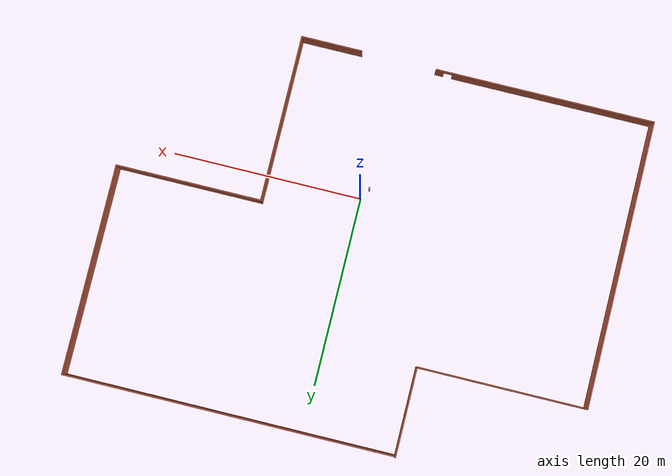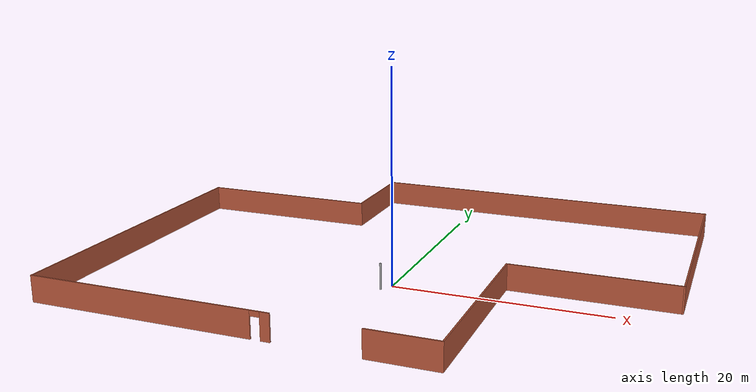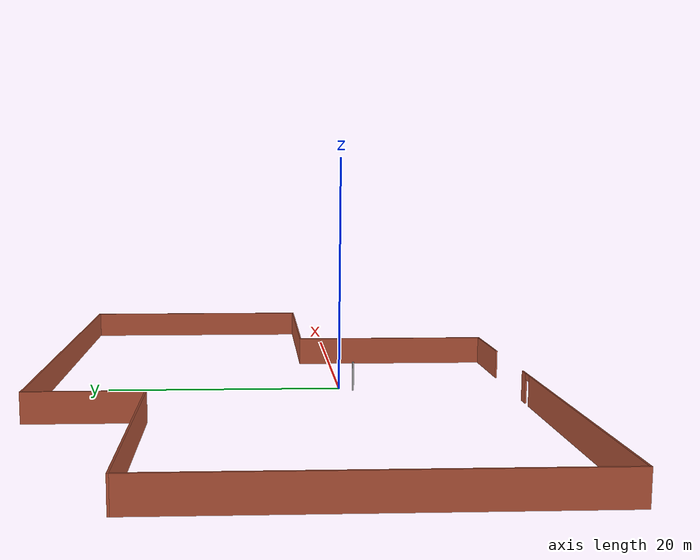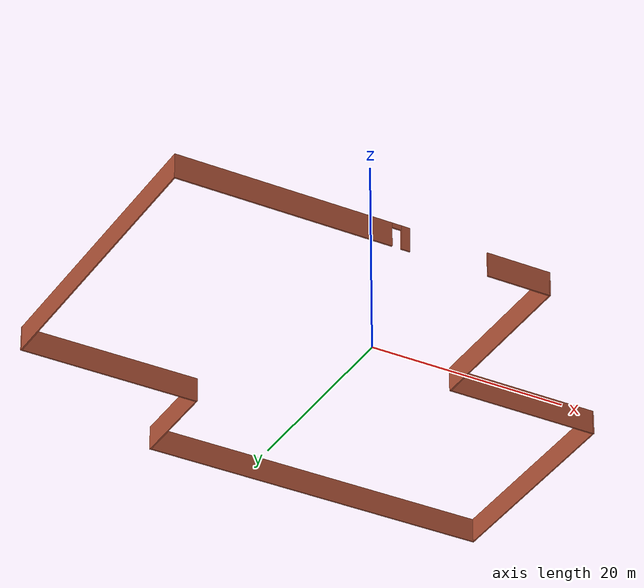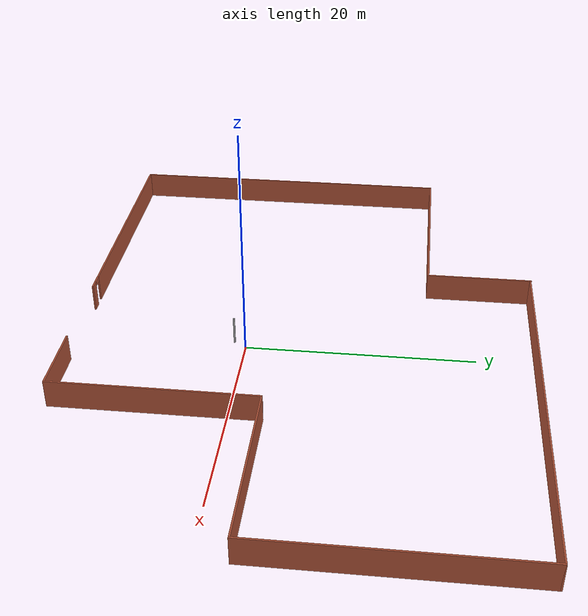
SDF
<?xml version='1.0'?>
<sdf version='1.6'>
  <model name='test'>
    <pose frame=''>-1.22512 5.11603 0 0 -0 0</pose>
    <link name='Wall_1'>
      <collision name='Wall_1_Collision'>
        <geometry>
          <box>
            <size>0.15 0.15 2.5</size>
          </box>
        </geometry>
        <pose frame=''>0 0 1.25 0 -0 0</pose>
      </collision>
      <visual name='Wall_1_Visual'>
        <pose frame=''>0 0 1.25 0 -0 0</pose>
        <geometry>
          <box>
            <size>0.15 0.15 2.5</size>
          </box>
        </geometry>
        <material>
          <script>
            <uri>file://media/materials/scripts/gazebo.material</uri>
            <name>Gazebo/Grey</name>
          </script>
          <ambient>1 1 1 1</ambient>
        </material>
      </visual>
      <pose frame=''>0.52512 -6.20603 0 0 -0 0</pose>
    </link>
    <link name='Wall_33'>
      <collision name='Wall_33_Collision'>
        <geometry>
          <box>
            <size>9.5 0.15 2.5</size>
          </box>
        </geometry>
        <pose frame=''>0 0 1.25 0 -0 0</pose>
      </collision>
      <visual name='Wall_33_Visual'>
        <pose frame=''>0 0 1.25 0 -0 0</pose>
        <geometry>
          <box>
            <size>9.5 0.15 2.5</size>
          </box>
        </geometry>
        <material>
          <script>
            <uri>file://media/materials/scripts/gazebo.material</uri>
            <name>Gazebo/Bricks</name>
          </script>
          <ambient>1 1 1 1</ambient>
        </material>
      </visual>
      <pose frame=''>-8.56286 15.1964 0 0 0 -1.5708</pose>
    </link>
    <link name='Wall_34'>
      <collision name='Wall_34_Collision'>
        <geometry>
          <box>
            <size>18 0.15 2.5</size>
          </box>
        </geometry>
        <pose frame=''>0 0 1.25 0 -0 0</pose>
      </collision>
      <visual name='Wall_34_Visual'>
        <pose frame=''>0 0 1.25 0 -0 0</pose>
        <geometry>
          <box>
            <size>18 0.15 2.5</size>
          </box>
        </geometry>
        <material>
          <script>
            <uri>file://media/materials/scripts/gazebo.material</uri>
            <name>Gazebo/Bricks</name>
          </script>
          <ambient>1 1 1 1</ambient>
        </material>
      </visual>
      <pose frame=''>-17.4879 10.5214 0 0 -0 3.14159</pose>
    </link>
    <link name='Wall_35'>
      <collision name='Wall_35_Collision'>
        <geometry>
          <box>
            <size>30.5 0.15 2.5</size>
          </box>
        </geometry>
        <pose frame=''>0 0 1.25 0 -0 0</pose>
      </collision>
      <visual name='Wall_35_Visual'>
        <pose frame=''>0 0 1.25 0 -0 0</pose>
        <geometry>
          <box>
            <size>30.5 0.15 2.5</size>
          </box>
        </geometry>
        <material>
          <script>
            <uri>file://media/materials/scripts/gazebo.material</uri>
            <name>Gazebo/Bricks</name>
          </script>
          <ambient>1 1 1 1</ambient>
        </material>
      </visual>
      <pose frame=''>-26.4129 -4.65358 0 0 0 -1.5708</pose>
    </link>
    <link name='Wall_36'>
      <pose frame=''>-14.8629 -19.8286 0 0 -0 0</pose>
      <visual name='Wall_36_Visual_0'>
        <pose frame=''>-0.892818 0 1.25 0 -0 0</pose>
        <geometry>
          <box>
            <size>21.4644 0.15 2.5</size>
          </box>
        </geometry>
        <material>
          <script>
            <uri>file://media/materials/scripts/gazebo.material</uri>
            <name>Gazebo/Bricks</name>
          </script>
          <ambient>1 1 1 1</ambient>
        </material>
      </visual>
      <collision name='Wall_36_Collision_0'>
        <geometry>
          <box>
            <size>21.4644 0.15 2.5</size>
          </box>
        </geometry>
        <pose frame=''>-0.892818 0 1.25 0 -0 0</pose>
      </collision>
      <visual name='Wall_36_Visual_1'>
        <pose frame=''>11.1822 0 1.25 0 -0 0</pose>
        <geometry>
          <box>
            <size>0.885636 0.15 2.5</size>
          </box>
        </geometry>
        <material>
          <script>
            <uri>file://media/materials/scripts/gazebo.material</uri>
            <name>Gazebo/Bricks</name>
          </script>
          <ambient>1 1 1 1</ambient>
        </material>
      </visual>
      <collision name='Wall_36_Collision_1'>
        <geometry>
          <box>
            <size>0.885636 0.15 2.5</size>
          </box>
        </geometry>
        <pose frame=''>11.1822 0 1.25 0 -0 0</pose>
      </collision>
      <visual name='Wall_36_Visual_2'>
        <pose frame=''>10.2894 0 2.25 0 -0 0</pose>
        <geometry>
          <box>
            <size>0.9 0.15 0.5</size>
          </box>
        </geometry>
        <material>
          <script>
            <uri>file://media/materials/scripts/gazebo.material</uri>
            <name>Gazebo/Bricks</name>
          </script>
          <ambient>1 1 1 1</ambient>
        </material>
      </visual>
      <collision name='Wall_36_Collision_2'>
        <geometry>
          <box>
            <size>0.9 0.15 0.5</size>
          </box>
        </geometry>
        <pose frame=''>10.2894 0 2.25 0 -0 0</pose>
      </collision>
    </link>
    <link name='Wall_40'>
      <collision name='Wall_40_Collision'>
        <geometry>
          <box>
            <size>6.5 0.15 2.5</size>
          </box>
        </geometry>
        <pose frame=''>0 0 1.25 0 -0 0</pose>
      </collision>
      <visual name='Wall_40_Visual'>
        <pose frame=''>0 0 1.25 0 -0 0</pose>
        <geometry>
          <box>
            <size>6.5 0.15 2.5</size>
          </box>
        </geometry>
        <material>
          <script>
            <uri>file://media/materials/scripts/gazebo.material</uri>
            <name>Gazebo/Bricks</name>
          </script>
          <ambient>1 1 1 1</ambient>
        </material>
      </visual>
      <pose frame=''>7.88786 -19.8714 0 0 -0 0</pose>
    </link>
    <link name='Wall_41'>
      <collision name='Wall_41_Collision'>
        <geometry>
          <box>
            <size>17.75 0.15 2.5</size>
          </box>
        </geometry>
        <pose frame=''>0 0 1.25 0 -0 0</pose>
      </collision>
      <visual name='Wall_41_Visual'>
        <pose frame=''>0 0 1.25 0 -0 0</pose>
        <geometry>
          <box>
            <size>17.75 0.15 2.5</size>
          </box>
        </geometry>
        <material>
          <script>
            <uri>file://media/materials/scripts/gazebo.material</uri>
            <name>Gazebo/Bricks</name>
          </script>
          <ambient>1 1 1 1</ambient>
        </material>
      </visual>
      <pose frame=''>11.0629 -11.0714 0 0 -0 1.5708</pose>
    </link>
    <link name='Wall_42'>
      <collision name='Wall_42_Collision'>
        <geometry>
          <box>
            <size>15.5 0.15 2.5</size>
          </box>
        </geometry>
        <pose frame=''>0 0 1.25 0 -0 0</pose>
      </collision>
      <visual name='Wall_42_Visual'>
        <pose frame=''>0 0 1.25 0 -0 0</pose>
        <geometry>
          <box>
            <size>15.5 0.15 2.5</size>
          </box>
        </geometry>
        <material>
          <script>
            <uri>file://media/materials/scripts/gazebo.material</uri>
            <name>Gazebo/Bricks</name>
          </script>
          <ambient>1 1 1 1</ambient>
        </material>
      </visual>
      <pose frame=''>18.7379 -2.27142 0 0 -0 0</pose>
    </link>
    <link name='Wall_43'>
      <collision name='Wall_43_Collision'>
        <geometry>
          <box>
            <size>22.25 0.15 2.5</size>
          </box>
        </geometry>
        <pose frame=''>0 0 1.25 0 -0 0</pose>
      </collision>
      <visual name='Wall_43_Visual'>
        <pose frame=''>0 0 1.25 0 -0 0</pose>
        <geometry>
          <box>
            <size>22.25 0.15 2.5</size>
          </box>
        </geometry>
        <material>
          <script>
            <uri>file://media/materials/scripts/gazebo.material</uri>
            <name>Gazebo/Bricks</name>
          </script>
          <ambient>1 1 1 1</ambient>
        </material>
      </visual>
      <pose frame=''>26.4129 8.77858 0 0 -0 1.5708</pose>
    </link>
    <link name='Wall_44'>
      <collision name='Wall_44_Collision'>
        <geometry>
          <box>
            <size>35 0.15 2.5</size>
          </box>
        </geometry>
        <pose frame=''>0 0 1.25 0 -0 0</pose>
      </collision>
      <visual name='Wall_44_Visual'>
        <pose frame=''>0 0 1.25 0 -0 0</pose>
        <geometry>
          <box>
            <size>35 0.15 2.5</size>
          </box>
        </geometry>
        <material>
          <script>
            <uri>file://media/materials/scripts/gazebo.material</uri>
            <name>Gazebo/Bricks</name>
          </script>
          <ambient>1 1 1 1</ambient>
        </material>
      </visual>
      <pose frame=''>8.98786 19.8286 0 0 -0 3.14159</pose>
    </link>
    <static>1</static>
  </model>
</sdf>
